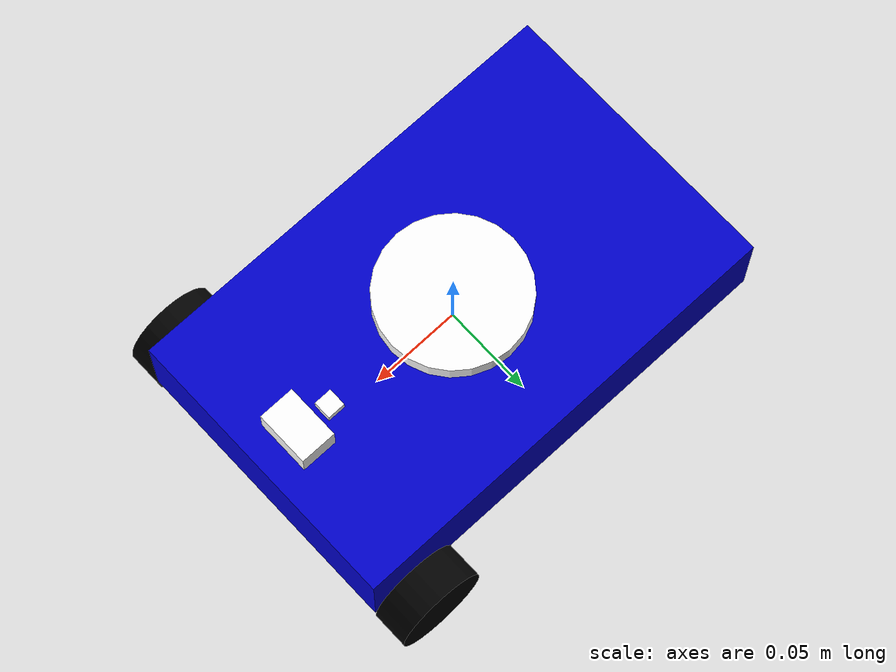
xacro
<?xml version="1.0"?>
<robot name="my_robot" xmlns:xacro="http://www.ros.org/wiki/xacro">

    <xacro:include filename="$(find turn_on_robot)/urdf/my_robot_gazebo.xacro"/>

    <link name="base_footprint" />

    <joint name="base_joint" type="fixed" >
        <parent link="base_footprint" />
        <child link="base_link"/>
        <origin rpy="0 0 0" xyz="0 0 0"/>
    </joint>

    <!-- 底盘 -->
    <link name="base_link">
        <inertial>
        <origin xyz="0 0 0" rpy="0 0 0"/>
        <mass value="0.1"/>
        <inertia ixx="0.0001" ixy="0" ixz="0" iyy="0.0001" iyz="0" izz="0.0001"/>
        </inertial>

        <visual>
        <geometry>
            <box size="0.25 0.16 0.05"/>
        </geometry>
        <origin rpy="0 0 0" xyz="0 0 0"/>
        <material name="blue">
            <color rgba="0 0 0.8 1"/>
        </material>
        </visual>

        <collision>
        <origin xyz="0 0 0" rpy="0 0 0"/>
        <geometry>
            <box size="0.25 0.16 0.05"/>
        </geometry>
        </collision>

    </link>

    <!-- 左轮 -->
    <link name="left_wheel_link">

        <inertial>
        <origin xyz="0 0 0" rpy="0 0 0"/>
        <mass value="0.1"/>
        <inertia ixx="0.0001" ixy="0" ixz="0" iyy="0.0001" iyz="0" izz="0.0001"/>
        </inertial>

        <visual>
        <geometry>
            <cylinder length="0.02" radius="0.025"/>
        </geometry>
        <material name="black">
            <color rgba="0 0 0 1"/>
        </material>
        </visual>

        <collision>
        <origin xyz="0 0 0" rpy="0 0 0"/>
        <geometry>
            <cylinder length="0.02" radius="0.025"/>
        </geometry>
        </collision>

    </link>
    <!-- 右轮 -->
    <link name="right_wheel_link">

        <inertial>
        <origin xyz="0 0 0" rpy="0 0 0"/>
        <mass value="0.1"/>
        <inertia ixx="0.0001" ixy="0" ixz="0" iyy="0.0001" iyz="0" izz="0.0001"/>
        </inertial>

        <visual>
        <geometry>
            <cylinder length="0.02" radius="0.025"/>
        </geometry>
        <material name="black">
            <color rgba="0 0 0 1"/>
        </material>
        </visual>

        <collision>
        <origin xyz="0 0 0" rpy="0 0 0"/>
        <geometry>
            <cylinder length="0.02" radius="0.025"/>
        </geometry>
        </collision>

    </link>

    <link name="ball_wheel_link">

        <inertial>
        <origin xyz="0 0 0" rpy="0 0 0"/>
        <mass value="0.1"/>
        <inertia ixx="0" ixy="0" ixz="0" iyy="0" iyz="0" izz="0"/>
        </inertial>

        <visual>
        <geometry>
            <sphere radius="0.025"/>
        </geometry>
        <material name="black">
            <color rgba="0 0 0 1"/>
        </material>
        </visual>

        <collision>
        <origin xyz="0 0 0" rpy="0 0 0"/>
        <geometry>
            <sphere radius="0.025"/>
        </geometry>
        </collision>

    </link>

    <!-- 轮子与底盘的关节 -->
    <joint name="left_wheel_joint" type="continuous">
        <parent link="base_link"/>
        <child link="left_wheel_link"/>
        <origin xyz="0.1 0.09 -0.03" rpy="1.5707 0 0"/>
        <axis xyz="0 0 -1"/>
    </joint>

    <joint name="right_wheel_joint" type="continuous">
        <parent link="base_link"/>
        <child link="right_wheel_link"/>
        <origin xyz="0.1 -0.09 -0.03" rpy="1.5707 0 0"/>
        <axis xyz="0 0 -1"/>
    </joint>

    <joint name="ball_wheel_joint" type="fixed">
        <axis xyz="0 0 1" />
        <parent link="base_link" />
        <child link="ball_wheel_link" />
        <origin xyz="-0.10 0 -0.03" rpy="0 0 0"/>
    </joint>

    <!-- imu sensor -->
    <link name="imu">
        <visual>
            <geometry>
                <box size="0.01 0.01 0.01"/>
            </geometry>
            <material name="white">
                <color rgba="1 1 1 1"/>
            </material>
        </visual>
    </link>

    <joint name="imu_joint" type="fixed">
        <parent link="base_link"/>
        <child link="imu"/>
        <origin xyz="0.08 0 0.025"/>
    </joint>

    <!-- camera -->
    <link name="base_camera_link">
        <visual>
            <geometry>
                <box size="0.02 0.03 0.03"/>
            </geometry>
            <material name="white">
                <color rgba="1 1 1 1"/>
            </material>
        </visual>
    </link>

    <joint name="camera_joint" type="fixed">
        <parent link="base_link"/>
        <child link="base_camera_link"/>
        <origin xyz="0.1 0 0.025"/>
    </joint>

    <!-- laser -->
    <link name="base_laser_link">
        <visual>
            <geometry>
                <cylinder length="0.06" radius="0.04"/>
            </geometry>
            <material name="white">
                <color rgba="1 1 1 1"/>
            </material>
        </visual>
    </link>

    <joint name="laser_joint" type="fixed">
        <parent link="base_link"/>
        <child link="base_laser_link"/>
        <origin xyz="0 0 0.006"/>
    </joint>
</robot>
